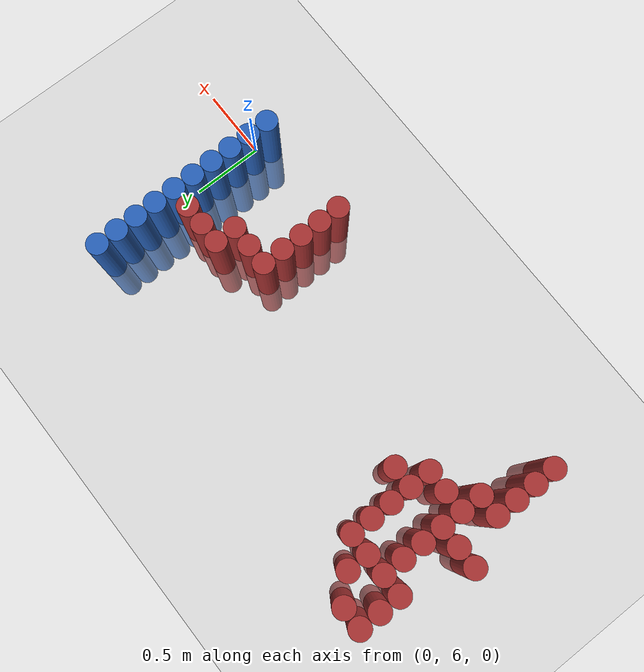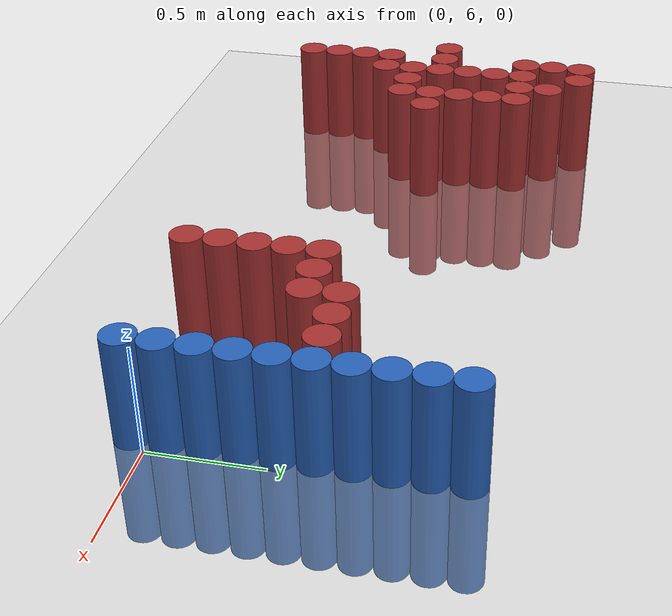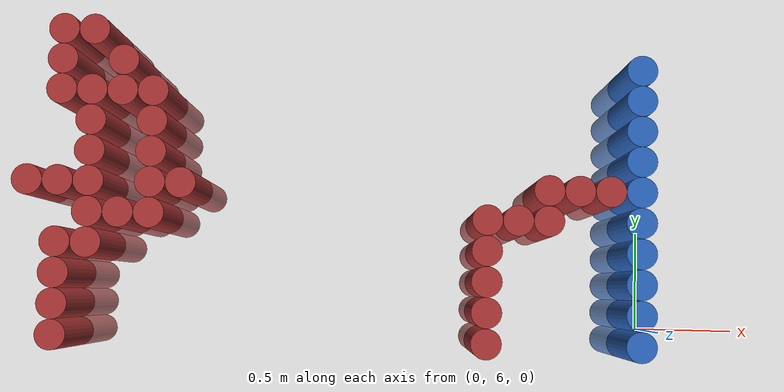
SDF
<sdf version="1.6">
 <world name="default">
  <model name="ground_plane">
   <static>1</static>
   <link name="link">
    <collision name="collision">
     <geometry><plane><normal>0 0 1</normal><size>100 100</size></plane></geometry>
     <surface><friction><ode><mu>100</mu><mu2>50</mu2></ode></friction></surface>
    </collision>
    <visual name="visual">
     <cast_shadows>0</cast_shadows>
     <geometry><plane><normal>0 0 1</normal><size>100 100</size></plane></geometry>
     <material>
      <script><uri>file://media/materials/scripts/gazebo.material</uri><name>Gazebo/Grey</name></script>
     </material>
    </visual>
   </link>
  </model>
  <model name="unit_cylinder_163">
   <static>1</static>
   <pose>-3.075000 6.675000 0.000000 0.000000 0.000000 0.000000</pose>
   <link name="link">
    <inertial>
     <mass>1</mass>
     <inertia><ixx>0.145833</ixx><ixy>0</ixy><ixz>0</ixz><iyy>0.145833</iyy><iyz>0</iyz><izz>0.125</izz></inertia>
    </inertial>
    <collision name="collision">
     <geometry><cylinder><radius>0.075000</radius><length>1</length></cylinder></geometry>
    </collision>
    <visual name="visual">
     <geometry><cylinder><radius>0.075000</radius><length>1</length></cylinder></geometry>
     <material>
      <ambient>0.648000 0.192000 0.192000 1</ambient>
      <diffuse>0.648000 0.192000 0.192000 1</diffuse>
     </material>
     <material>
      <script><name>Gazebo/Grey</name><uri>file://media/materials/scripts/gazebo.material</uri></script>
     </material>
    </visual>
   </link>
  </model>
  <model name="unit_cylinder_171">
   <static>1</static>
   <pose>-2.925000 5.925000 0.000000 0.000000 0.000000 0.000000</pose>
   <link name="link">
    <inertial>
     <mass>1</mass>
     <inertia><ixx>0.145833</ixx><ixy>0</ixy><ixz>0</ixz><iyy>0.145833</iyy><iyz>0</iyz><izz>0.125</izz></inertia>
    </inertial>
    <collision name="collision">
     <geometry><cylinder><radius>0.075000</radius><length>1</length></cylinder></geometry>
    </collision>
    <visual name="visual">
     <geometry><cylinder><radius>0.075000</radius><length>1</length></cylinder></geometry>
     <material>
      <ambient>0.648000 0.192000 0.192000 1</ambient>
      <diffuse>0.648000 0.192000 0.192000 1</diffuse>
     </material>
     <material>
      <script><name>Gazebo/Grey</name><uri>file://media/materials/scripts/gazebo.material</uri></script>
     </material>
    </visual>
   </link>
  </model>
  <model name="unit_cylinder_172">
   <static>1</static>
   <pose>-2.925000 6.075000 0.000000 0.000000 0.000000 0.000000</pose>
   <link name="link">
    <inertial>
     <mass>1</mass>
     <inertia><ixx>0.145833</ixx><ixy>0</ixy><ixz>0</ixz><iyy>0.145833</iyy><iyz>0</iyz><izz>0.125</izz></inertia>
    </inertial>
    <collision name="collision">
     <geometry><cylinder><radius>0.075000</radius><length>1</length></cylinder></geometry>
    </collision>
    <visual name="visual">
     <geometry><cylinder><radius>0.075000</radius><length>1</length></cylinder></geometry>
     <material>
      <ambient>0.648000 0.192000 0.192000 1</ambient>
      <diffuse>0.648000 0.192000 0.192000 1</diffuse>
     </material>
     <material>
      <script><name>Gazebo/Grey</name><uri>file://media/materials/scripts/gazebo.material</uri></script>
     </material>
    </visual>
   </link>
  </model>
  <model name="unit_cylinder_173">
   <static>1</static>
   <pose>-2.925000 6.225000 0.000000 0.000000 0.000000 0.000000</pose>
   <link name="link">
    <inertial>
     <mass>1</mass>
     <inertia><ixx>0.145833</ixx><ixy>0</ixy><ixz>0</ixz><iyy>0.145833</iyy><iyz>0</iyz><izz>0.125</izz></inertia>
    </inertial>
    <collision name="collision">
     <geometry><cylinder><radius>0.075000</radius><length>1</length></cylinder></geometry>
    </collision>
    <visual name="visual">
     <geometry><cylinder><radius>0.075000</radius><length>1</length></cylinder></geometry>
     <material>
      <ambient>0.648000 0.192000 0.192000 1</ambient>
      <diffuse>0.648000 0.192000 0.192000 1</diffuse>
     </material>
     <material>
      <script><name>Gazebo/Grey</name><uri>file://media/materials/scripts/gazebo.material</uri></script>
     </material>
    </visual>
   </link>
  </model>
  <model name="unit_cylinder_174">
   <static>1</static>
   <pose>-2.925000 6.375000 0.000000 0.000000 0.000000 0.000000</pose>
   <link name="link">
    <inertial>
     <mass>1</mass>
     <inertia><ixx>0.145833</ixx><ixy>0</ixy><ixz>0</ixz><iyy>0.145833</iyy><iyz>0</iyz><izz>0.125</izz></inertia>
    </inertial>
    <collision name="collision">
     <geometry><cylinder><radius>0.075000</radius><length>1</length></cylinder></geometry>
    </collision>
    <visual name="visual">
     <geometry><cylinder><radius>0.075000</radius><length>1</length></cylinder></geometry>
     <material>
      <ambient>0.648000 0.192000 0.192000 1</ambient>
      <diffuse>0.648000 0.192000 0.192000 1</diffuse>
     </material>
     <material>
      <script><name>Gazebo/Grey</name><uri>file://media/materials/scripts/gazebo.material</uri></script>
     </material>
    </visual>
   </link>
  </model>
  <model name="unit_cylinder_175">
   <static>1</static>
   <pose>-2.925000 6.675000 0.000000 0.000000 0.000000 0.000000</pose>
   <link name="link">
    <inertial>
     <mass>1</mass>
     <inertia><ixx>0.145833</ixx><ixy>0</ixy><ixz>0</ixz><iyy>0.145833</iyy><iyz>0</iyz><izz>0.125</izz></inertia>
    </inertial>
    <collision name="collision">
     <geometry><cylinder><radius>0.075000</radius><length>1</length></cylinder></geometry>
    </collision>
    <visual name="visual">
     <geometry><cylinder><radius>0.075000</radius><length>1</length></cylinder></geometry>
     <material>
      <ambient>0.648000 0.192000 0.192000 1</ambient>
      <diffuse>0.648000 0.192000 0.192000 1</diffuse>
     </material>
     <material>
      <script><name>Gazebo/Grey</name><uri>file://media/materials/scripts/gazebo.material</uri></script>
     </material>
    </visual>
   </link>
  </model>
  <model name="unit_cylinder_176">
   <static>1</static>
   <pose>-2.925000 7.125000 0.000000 0.000000 0.000000 0.000000</pose>
   <link name="link">
    <inertial>
     <mass>1</mass>
     <inertia><ixx>0.145833</ixx><ixy>0</ixy><ixz>0</ixz><iyy>0.145833</iyy><iyz>0</iyz><izz>0.125</izz></inertia>
    </inertial>
    <collision name="collision">
     <geometry><cylinder><radius>0.075000</radius><length>1</length></cylinder></geometry>
    </collision>
    <visual name="visual">
     <geometry><cylinder><radius>0.075000</radius><length>1</length></cylinder></geometry>
     <material>
      <ambient>0.648000 0.192000 0.192000 1</ambient>
      <diffuse>0.648000 0.192000 0.192000 1</diffuse>
     </material>
     <material>
      <script><name>Gazebo/Grey</name><uri>file://media/materials/scripts/gazebo.material</uri></script>
     </material>
    </visual>
   </link>
  </model>
  <model name="unit_cylinder_177">
   <static>1</static>
   <pose>-2.925000 7.275000 0.000000 0.000000 0.000000 0.000000</pose>
   <link name="link">
    <inertial>
     <mass>1</mass>
     <inertia><ixx>0.145833</ixx><ixy>0</ixy><ixz>0</ixz><iyy>0.145833</iyy><iyz>0</iyz><izz>0.125</izz></inertia>
    </inertial>
    <collision name="collision">
     <geometry><cylinder><radius>0.075000</radius><length>1</length></cylinder></geometry>
    </collision>
    <visual name="visual">
     <geometry><cylinder><radius>0.075000</radius><length>1</length></cylinder></geometry>
     <material>
      <ambient>0.648000 0.192000 0.192000 1</ambient>
      <diffuse>0.648000 0.192000 0.192000 1</diffuse>
     </material>
     <material>
      <script><name>Gazebo/Grey</name><uri>file://media/materials/scripts/gazebo.material</uri></script>
     </material>
    </visual>
   </link>
  </model>
  <model name="unit_cylinder_178">
   <static>1</static>
   <pose>-2.925000 7.425000 0.000000 0.000000 0.000000 0.000000</pose>
   <link name="link">
    <inertial>
     <mass>1</mass>
     <inertia><ixx>0.145833</ixx><ixy>0</ixy><ixz>0</ixz><iyy>0.145833</iyy><iyz>0</iyz><izz>0.125</izz></inertia>
    </inertial>
    <collision name="collision">
     <geometry><cylinder><radius>0.075000</radius><length>1</length></cylinder></geometry>
    </collision>
    <visual name="visual">
     <geometry><cylinder><radius>0.075000</radius><length>1</length></cylinder></geometry>
     <material>
      <ambient>0.648000 0.192000 0.192000 1</ambient>
      <diffuse>0.648000 0.192000 0.192000 1</diffuse>
     </material>
     <material>
      <script><name>Gazebo/Grey</name><uri>file://media/materials/scripts/gazebo.material</uri></script>
     </material>
    </visual>
   </link>
  </model>
  <model name="unit_cylinder_187">
   <static>1</static>
   <pose>-2.775000 6.375000 0.000000 0.000000 0.000000 0.000000</pose>
   <link name="link">
    <inertial>
     <mass>1</mass>
     <inertia><ixx>0.145833</ixx><ixy>0</ixy><ixz>0</ixz><iyy>0.145833</iyy><iyz>0</iyz><izz>0.125</izz></inertia>
    </inertial>
    <collision name="collision">
     <geometry><cylinder><radius>0.075000</radius><length>1</length></cylinder></geometry>
    </collision>
    <visual name="visual">
     <geometry><cylinder><radius>0.075000</radius><length>1</length></cylinder></geometry>
     <material>
      <ambient>0.648000 0.192000 0.192000 1</ambient>
      <diffuse>0.648000 0.192000 0.192000 1</diffuse>
     </material>
     <material>
      <script><name>Gazebo/Grey</name><uri>file://media/materials/scripts/gazebo.material</uri></script>
     </material>
    </visual>
   </link>
  </model>
  <model name="unit_cylinder_188">
   <static>1</static>
   <pose>-2.775000 6.525000 0.000000 0.000000 0.000000 0.000000</pose>
   <link name="link">
    <inertial>
     <mass>1</mass>
     <inertia><ixx>0.145833</ixx><ixy>0</ixy><ixz>0</ixz><iyy>0.145833</iyy><iyz>0</iyz><izz>0.125</izz></inertia>
    </inertial>
    <collision name="collision">
     <geometry><cylinder><radius>0.075000</radius><length>1</length></cylinder></geometry>
    </collision>
    <visual name="visual">
     <geometry><cylinder><radius>0.075000</radius><length>1</length></cylinder></geometry>
     <material>
      <ambient>0.648000 0.192000 0.192000 1</ambient>
      <diffuse>0.648000 0.192000 0.192000 1</diffuse>
     </material>
     <material>
      <script><name>Gazebo/Grey</name><uri>file://media/materials/scripts/gazebo.material</uri></script>
     </material>
    </visual>
   </link>
  </model>
  <model name="unit_cylinder_189">
   <static>1</static>
   <pose>-2.775000 6.675000 0.000000 0.000000 0.000000 0.000000</pose>
   <link name="link">
    <inertial>
     <mass>1</mass>
     <inertia><ixx>0.145833</ixx><ixy>0</ixy><ixz>0</ixz><iyy>0.145833</iyy><iyz>0</iyz><izz>0.125</izz></inertia>
    </inertial>
    <collision name="collision">
     <geometry><cylinder><radius>0.075000</radius><length>1</length></cylinder></geometry>
    </collision>
    <visual name="visual">
     <geometry><cylinder><radius>0.075000</radius><length>1</length></cylinder></geometry>
     <material>
      <ambient>0.648000 0.192000 0.192000 1</ambient>
      <diffuse>0.648000 0.192000 0.192000 1</diffuse>
     </material>
     <material>
      <script><name>Gazebo/Grey</name><uri>file://media/materials/scripts/gazebo.material</uri></script>
     </material>
    </visual>
   </link>
  </model>
  <model name="unit_cylinder_190">
   <static>1</static>
   <pose>-2.775000 6.825000 0.000000 0.000000 0.000000 0.000000</pose>
   <link name="link">
    <inertial>
     <mass>1</mass>
     <inertia><ixx>0.145833</ixx><ixy>0</ixy><ixz>0</ixz><iyy>0.145833</iyy><iyz>0</iyz><izz>0.125</izz></inertia>
    </inertial>
    <collision name="collision">
     <geometry><cylinder><radius>0.075000</radius><length>1</length></cylinder></geometry>
    </collision>
    <visual name="visual">
     <geometry><cylinder><radius>0.075000</radius><length>1</length></cylinder></geometry>
     <material>
      <ambient>0.648000 0.192000 0.192000 1</ambient>
      <diffuse>0.648000 0.192000 0.192000 1</diffuse>
     </material>
     <material>
      <script><name>Gazebo/Grey</name><uri>file://media/materials/scripts/gazebo.material</uri></script>
     </material>
    </visual>
   </link>
  </model>
  <model name="unit_cylinder_191">
   <static>1</static>
   <pose>-2.775000 6.975000 0.000000 0.000000 0.000000 0.000000</pose>
   <link name="link">
    <inertial>
     <mass>1</mass>
     <inertia><ixx>0.145833</ixx><ixy>0</ixy><ixz>0</ixz><iyy>0.145833</iyy><iyz>0</iyz><izz>0.125</izz></inertia>
    </inertial>
    <collision name="collision">
     <geometry><cylinder><radius>0.075000</radius><length>1</length></cylinder></geometry>
    </collision>
    <visual name="visual">
     <geometry><cylinder><radius>0.075000</radius><length>1</length></cylinder></geometry>
     <material>
      <ambient>0.648000 0.192000 0.192000 1</ambient>
      <diffuse>0.648000 0.192000 0.192000 1</diffuse>
     </material>
     <material>
      <script><name>Gazebo/Grey</name><uri>file://media/materials/scripts/gazebo.material</uri></script>
     </material>
    </visual>
   </link>
  </model>
  <model name="unit_cylinder_192">
   <static>1</static>
   <pose>-2.775000 7.125000 0.000000 0.000000 0.000000 0.000000</pose>
   <link name="link">
    <inertial>
     <mass>1</mass>
     <inertia><ixx>0.145833</ixx><ixy>0</ixy><ixz>0</ixz><iyy>0.145833</iyy><iyz>0</iyz><izz>0.125</izz></inertia>
    </inertial>
    <collision name="collision">
     <geometry><cylinder><radius>0.075000</radius><length>1</length></cylinder></geometry>
    </collision>
    <visual name="visual">
     <geometry><cylinder><radius>0.075000</radius><length>1</length></cylinder></geometry>
     <material>
      <ambient>0.648000 0.192000 0.192000 1</ambient>
      <diffuse>0.648000 0.192000 0.192000 1</diffuse>
     </material>
     <material>
      <script><name>Gazebo/Grey</name><uri>file://media/materials/scripts/gazebo.material</uri></script>
     </material>
    </visual>
   </link>
  </model>
  <model name="unit_cylinder_193">
   <static>1</static>
   <pose>-2.775000 7.425000 0.000000 0.000000 0.000000 0.000000</pose>
   <link name="link">
    <inertial>
     <mass>1</mass>
     <inertia><ixx>0.145833</ixx><ixy>0</ixy><ixz>0</ixz><iyy>0.145833</iyy><iyz>0</iyz><izz>0.125</izz></inertia>
    </inertial>
    <collision name="collision">
     <geometry><cylinder><radius>0.075000</radius><length>1</length></cylinder></geometry>
    </collision>
    <visual name="visual">
     <geometry><cylinder><radius>0.075000</radius><length>1</length></cylinder></geometry>
     <material>
      <ambient>0.648000 0.192000 0.192000 1</ambient>
      <diffuse>0.648000 0.192000 0.192000 1</diffuse>
     </material>
     <material>
      <script><name>Gazebo/Grey</name><uri>file://media/materials/scripts/gazebo.material</uri></script>
     </material>
    </visual>
   </link>
  </model>
  <model name="unit_cylinder_194">
   <static>1</static>
   <pose>-2.625000 6.525000 0.000000 0.000000 0.000000 0.000000</pose>
   <link name="link">
    <inertial>
     <mass>1</mass>
     <inertia><ixx>0.145833</ixx><ixy>0</ixy><ixz>0</ixz><iyy>0.145833</iyy><iyz>0</iyz><izz>0.125</izz></inertia>
    </inertial>
    <collision name="collision">
     <geometry><cylinder><radius>0.075000</radius><length>1</length></cylinder></geometry>
    </collision>
    <visual name="visual">
     <geometry><cylinder><radius>0.075000</radius><length>1</length></cylinder></geometry>
     <material>
      <ambient>0.648000 0.192000 0.192000 1</ambient>
      <diffuse>0.648000 0.192000 0.192000 1</diffuse>
     </material>
     <material>
      <script><name>Gazebo/Grey</name><uri>file://media/materials/scripts/gazebo.material</uri></script>
     </material>
    </visual>
   </link>
  </model>
  <model name="unit_cylinder_195">
   <static>1</static>
   <pose>-2.625000 7.125000 0.000000 0.000000 0.000000 0.000000</pose>
   <link name="link">
    <inertial>
     <mass>1</mass>
     <inertia><ixx>0.145833</ixx><ixy>0</ixy><ixz>0</ixz><iyy>0.145833</iyy><iyz>0</iyz><izz>0.125</izz></inertia>
    </inertial>
    <collision name="collision">
     <geometry><cylinder><radius>0.075000</radius><length>1</length></cylinder></geometry>
    </collision>
    <visual name="visual">
     <geometry><cylinder><radius>0.075000</radius><length>1</length></cylinder></geometry>
     <material>
      <ambient>0.648000 0.192000 0.192000 1</ambient>
      <diffuse>0.648000 0.192000 0.192000 1</diffuse>
     </material>
     <material>
      <script><name>Gazebo/Grey</name><uri>file://media/materials/scripts/gazebo.material</uri></script>
     </material>
    </visual>
   </link>
  </model>
  <model name="unit_cylinder_196">
   <static>1</static>
   <pose>-2.625000 7.275000 0.000000 0.000000 0.000000 0.000000</pose>
   <link name="link">
    <inertial>
     <mass>1</mass>
     <inertia><ixx>0.145833</ixx><ixy>0</ixy><ixz>0</ixz><iyy>0.145833</iyy><iyz>0</iyz><izz>0.125</izz></inertia>
    </inertial>
    <collision name="collision">
     <geometry><cylinder><radius>0.075000</radius><length>1</length></cylinder></geometry>
    </collision>
    <visual name="visual">
     <geometry><cylinder><radius>0.075000</radius><length>1</length></cylinder></geometry>
     <material>
      <ambient>0.648000 0.192000 0.192000 1</ambient>
      <diffuse>0.648000 0.192000 0.192000 1</diffuse>
     </material>
     <material>
      <script><name>Gazebo/Grey</name><uri>file://media/materials/scripts/gazebo.material</uri></script>
     </material>
    </visual>
   </link>
  </model>
  <model name="unit_cylinder_198">
   <static>1</static>
   <pose>-2.475000 6.525000 0.000000 0.000000 0.000000 0.000000</pose>
   <link name="link">
    <inertial>
     <mass>1</mass>
     <inertia><ixx>0.145833</ixx><ixy>0</ixy><ixz>0</ixz><iyy>0.145833</iyy><iyz>0</iyz><izz>0.125</izz></inertia>
    </inertial>
    <collision name="collision">
     <geometry><cylinder><radius>0.075000</radius><length>1</length></cylinder></geometry>
    </collision>
    <visual name="visual">
     <geometry><cylinder><radius>0.075000</radius><length>1</length></cylinder></geometry>
     <material>
      <ambient>0.648000 0.192000 0.192000 1</ambient>
      <diffuse>0.648000 0.192000 0.192000 1</diffuse>
     </material>
     <material>
      <script><name>Gazebo/Grey</name><uri>file://media/materials/scripts/gazebo.material</uri></script>
     </material>
    </visual>
   </link>
  </model>
  <model name="unit_cylinder_199">
   <static>1</static>
   <pose>-2.475000 6.675000 0.000000 0.000000 0.000000 0.000000</pose>
   <link name="link">
    <inertial>
     <mass>1</mass>
     <inertia><ixx>0.145833</ixx><ixy>0</ixy><ixz>0</ixz><iyy>0.145833</iyy><iyz>0</iyz><izz>0.125</izz></inertia>
    </inertial>
    <collision name="collision">
     <geometry><cylinder><radius>0.075000</radius><length>1</length></cylinder></geometry>
    </collision>
    <visual name="visual">
     <geometry><cylinder><radius>0.075000</radius><length>1</length></cylinder></geometry>
     <material>
      <ambient>0.648000 0.192000 0.192000 1</ambient>
      <diffuse>0.648000 0.192000 0.192000 1</diffuse>
     </material>
     <material>
      <script><name>Gazebo/Grey</name><uri>file://media/materials/scripts/gazebo.material</uri></script>
     </material>
    </visual>
   </link>
  </model>
  <model name="unit_cylinder_200">
   <static>1</static>
   <pose>-2.475000 6.825000 0.000000 0.000000 0.000000 0.000000</pose>
   <link name="link">
    <inertial>
     <mass>1</mass>
     <inertia><ixx>0.145833</ixx><ixy>0</ixy><ixz>0</ixz><iyy>0.145833</iyy><iyz>0</iyz><izz>0.125</izz></inertia>
    </inertial>
    <collision name="collision">
     <geometry><cylinder><radius>0.075000</radius><length>1</length></cylinder></geometry>
    </collision>
    <visual name="visual">
     <geometry><cylinder><radius>0.075000</radius><length>1</length></cylinder></geometry>
     <material>
      <ambient>0.648000 0.192000 0.192000 1</ambient>
      <diffuse>0.648000 0.192000 0.192000 1</diffuse>
     </material>
     <material>
      <script><name>Gazebo/Grey</name><uri>file://media/materials/scripts/gazebo.material</uri></script>
     </material>
    </visual>
   </link>
  </model>
  <model name="unit_cylinder_201">
   <static>1</static>
   <pose>-2.475000 6.975000 0.000000 0.000000 0.000000 0.000000</pose>
   <link name="link">
    <inertial>
     <mass>1</mass>
     <inertia><ixx>0.145833</ixx><ixy>0</ixy><ixz>0</ixz><iyy>0.145833</iyy><iyz>0</iyz><izz>0.125</izz></inertia>
    </inertial>
    <collision name="collision">
     <geometry><cylinder><radius>0.075000</radius><length>1</length></cylinder></geometry>
    </collision>
    <visual name="visual">
     <geometry><cylinder><radius>0.075000</radius><length>1</length></cylinder></geometry>
     <material>
      <ambient>0.648000 0.192000 0.192000 1</ambient>
      <diffuse>0.648000 0.192000 0.192000 1</diffuse>
     </material>
     <material>
      <script><name>Gazebo/Grey</name><uri>file://media/materials/scripts/gazebo.material</uri></script>
     </material>
    </visual>
   </link>
  </model>
  <model name="unit_cylinder_202">
   <static>1</static>
   <pose>-2.475000 7.125000 0.000000 0.000000 0.000000 0.000000</pose>
   <link name="link">
    <inertial>
     <mass>1</mass>
     <inertia><ixx>0.145833</ixx><ixy>0</ixy><ixz>0</ixz><iyy>0.145833</iyy><iyz>0</iyz><izz>0.125</izz></inertia>
    </inertial>
    <collision name="collision">
     <geometry><cylinder><radius>0.075000</radius><length>1</length></cylinder></geometry>
    </collision>
    <visual name="visual">
     <geometry><cylinder><radius>0.075000</radius><length>1</length></cylinder></geometry>
     <material>
      <ambient>0.648000 0.192000 0.192000 1</ambient>
      <diffuse>0.648000 0.192000 0.192000 1</diffuse>
     </material>
     <material>
      <script><name>Gazebo/Grey</name><uri>file://media/materials/scripts/gazebo.material</uri></script>
     </material>
    </visual>
   </link>
  </model>
  <model name="unit_cylinder_203">
   <static>1</static>
   <pose>-2.325000 6.675000 0.000000 0.000000 0.000000 0.000000</pose>
   <link name="link">
    <inertial>
     <mass>1</mass>
     <inertia><ixx>0.145833</ixx><ixy>0</ixy><ixz>0</ixz><iyy>0.145833</iyy><iyz>0</iyz><izz>0.125</izz></inertia>
    </inertial>
    <collision name="collision">
     <geometry><cylinder><radius>0.075000</radius><length>1</length></cylinder></geometry>
    </collision>
    <visual name="visual">
     <geometry><cylinder><radius>0.075000</radius><length>1</length></cylinder></geometry>
     <material>
      <ambient>0.648000 0.192000 0.192000 1</ambient>
      <diffuse>0.648000 0.192000 0.192000 1</diffuse>
     </material>
     <material>
      <script><name>Gazebo/Grey</name><uri>file://media/materials/scripts/gazebo.material</uri></script>
     </material>
    </visual>
   </link>
  </model>
  <model name="unit_cylinder_209">
   <static>1</static>
   <pose>-0.825000 5.925000 0.000000 0.000000 0.000000 0.000000</pose>
   <link name="link">
    <inertial>
     <mass>1</mass>
     <inertia><ixx>0.145833</ixx><ixy>0</ixy><ixz>0</ixz><iyy>0.145833</iyy><iyz>0</iyz><izz>0.125</izz></inertia>
    </inertial>
    <collision name="collision">
     <geometry><cylinder><radius>0.075000</radius><length>1</length></cylinder></geometry>
    </collision>
    <visual name="visual">
     <geometry><cylinder><radius>0.075000</radius><length>1</length></cylinder></geometry>
     <material>
      <ambient>0.648000 0.192000 0.192000 1</ambient>
      <diffuse>0.648000 0.192000 0.192000 1</diffuse>
     </material>
     <material>
      <script><name>Gazebo/Grey</name><uri>file://media/materials/scripts/gazebo.material</uri></script>
     </material>
    </visual>
   </link>
  </model>
  <model name="unit_cylinder_210">
   <static>1</static>
   <pose>-0.825000 6.075000 0.000000 0.000000 0.000000 0.000000</pose>
   <link name="link">
    <inertial>
     <mass>1</mass>
     <inertia><ixx>0.145833</ixx><ixy>0</ixy><ixz>0</ixz><iyy>0.145833</iyy><iyz>0</iyz><izz>0.125</izz></inertia>
    </inertial>
    <collision name="collision">
     <geometry><cylinder><radius>0.075000</radius><length>1</length></cylinder></geometry>
    </collision>
    <visual name="visual">
     <geometry><cylinder><radius>0.075000</radius><length>1</length></cylinder></geometry>
     <material>
      <ambient>0.648000 0.192000 0.192000 1</ambient>
      <diffuse>0.648000 0.192000 0.192000 1</diffuse>
     </material>
     <material>
      <script><name>Gazebo/Grey</name><uri>file://media/materials/scripts/gazebo.material</uri></script>
     </material>
    </visual>
   </link>
  </model>
  <model name="unit_cylinder_211">
   <static>1</static>
   <pose>-0.825000 6.225000 0.000000 0.000000 0.000000 0.000000</pose>
   <link name="link">
    <inertial>
     <mass>1</mass>
     <inertia><ixx>0.145833</ixx><ixy>0</ixy><ixz>0</ixz><iyy>0.145833</iyy><iyz>0</iyz><izz>0.125</izz></inertia>
    </inertial>
    <collision name="collision">
     <geometry><cylinder><radius>0.075000</radius><length>1</length></cylinder></geometry>
    </collision>
    <visual name="visual">
     <geometry><cylinder><radius>0.075000</radius><length>1</length></cylinder></geometry>
     <material>
      <ambient>0.648000 0.192000 0.192000 1</ambient>
      <diffuse>0.648000 0.192000 0.192000 1</diffuse>
     </material>
     <material>
      <script><name>Gazebo/Grey</name><uri>file://media/materials/scripts/gazebo.material</uri></script>
     </material>
    </visual>
   </link>
  </model>
  <model name="unit_cylinder_212">
   <static>1</static>
   <pose>-0.825000 6.375000 0.000000 0.000000 0.000000 0.000000</pose>
   <link name="link">
    <inertial>
     <mass>1</mass>
     <inertia><ixx>0.145833</ixx><ixy>0</ixy><ixz>0</ixz><iyy>0.145833</iyy><iyz>0</iyz><izz>0.125</izz></inertia>
    </inertial>
    <collision name="collision">
     <geometry><cylinder><radius>0.075000</radius><length>1</length></cylinder></geometry>
    </collision>
    <visual name="visual">
     <geometry><cylinder><radius>0.075000</radius><length>1</length></cylinder></geometry>
     <material>
      <ambient>0.648000 0.192000 0.192000 1</ambient>
      <diffuse>0.648000 0.192000 0.192000 1</diffuse>
     </material>
     <material>
      <script><name>Gazebo/Grey</name><uri>file://media/materials/scripts/gazebo.material</uri></script>
     </material>
    </visual>
   </link>
  </model>
  <model name="unit_cylinder_213">
   <static>1</static>
   <pose>-0.825000 6.525000 0.000000 0.000000 0.000000 0.000000</pose>
   <link name="link">
    <inertial>
     <mass>1</mass>
     <inertia><ixx>0.145833</ixx><ixy>0</ixy><ixz>0</ixz><iyy>0.145833</iyy><iyz>0</iyz><izz>0.125</izz></inertia>
    </inertial>
    <collision name="collision">
     <geometry><cylinder><radius>0.075000</radius><length>1</length></cylinder></geometry>
    </collision>
    <visual name="visual">
     <geometry><cylinder><radius>0.075000</radius><length>1</length></cylinder></geometry>
     <material>
      <ambient>0.648000 0.192000 0.192000 1</ambient>
      <diffuse>0.648000 0.192000 0.192000 1</diffuse>
     </material>
     <material>
      <script><name>Gazebo/Grey</name><uri>file://media/materials/scripts/gazebo.material</uri></script>
     </material>
    </visual>
   </link>
  </model>
  <model name="unit_cylinder_219">
   <static>1</static>
   <pose>-0.675000 6.525000 0.000000 0.000000 0.000000 0.000000</pose>
   <link name="link">
    <inertial>
     <mass>1</mass>
     <inertia><ixx>0.145833</ixx><ixy>0</ixy><ixz>0</ixz><iyy>0.145833</iyy><iyz>0</iyz><izz>0.125</izz></inertia>
    </inertial>
    <collision name="collision">
     <geometry><cylinder><radius>0.075000</radius><length>1</length></cylinder></geometry>
    </collision>
    <visual name="visual">
     <geometry><cylinder><radius>0.075000</radius><length>1</length></cylinder></geometry>
     <material>
      <ambient>0.648000 0.192000 0.192000 1</ambient>
      <diffuse>0.648000 0.192000 0.192000 1</diffuse>
     </material>
     <material>
      <script><name>Gazebo/Grey</name><uri>file://media/materials/scripts/gazebo.material</uri></script>
     </material>
    </visual>
   </link>
  </model>
  <model name="unit_cylinder_224">
   <static>1</static>
   <pose>-0.525000 6.525000 0.000000 0.000000 0.000000 0.000000</pose>
   <link name="link">
    <inertial>
     <mass>1</mass>
     <inertia><ixx>0.145833</ixx><ixy>0</ixy><ixz>0</ixz><iyy>0.145833</iyy><iyz>0</iyz><izz>0.125</izz></inertia>
    </inertial>
    <collision name="collision">
     <geometry><cylinder><radius>0.075000</radius><length>1</length></cylinder></geometry>
    </collision>
    <visual name="visual">
     <geometry><cylinder><radius>0.075000</radius><length>1</length></cylinder></geometry>
     <material>
      <ambient>0.648000 0.192000 0.192000 1</ambient>
      <diffuse>0.648000 0.192000 0.192000 1</diffuse>
     </material>
     <material>
      <script><name>Gazebo/Grey</name><uri>file://media/materials/scripts/gazebo.material</uri></script>
     </material>
    </visual>
   </link>
  </model>
  <model name="unit_cylinder_225">
   <static>1</static>
   <pose>-0.525000 6.675000 0.000000 0.000000 0.000000 0.000000</pose>
   <link name="link">
    <inertial>
     <mass>1</mass>
     <inertia><ixx>0.145833</ixx><ixy>0</ixy><ixz>0</ixz><iyy>0.145833</iyy><iyz>0</iyz><izz>0.125</izz></inertia>
    </inertial>
    <collision name="collision">
     <geometry><cylinder><radius>0.075000</radius><length>1</length></cylinder></geometry>
    </collision>
    <visual name="visual">
     <geometry><cylinder><radius>0.075000</radius><length>1</length></cylinder></geometry>
     <material>
      <ambient>0.648000 0.192000 0.192000 1</ambient>
      <diffuse>0.648000 0.192000 0.192000 1</diffuse>
     </material>
     <material>
      <script><name>Gazebo/Grey</name><uri>file://media/materials/scripts/gazebo.material</uri></script>
     </material>
    </visual>
   </link>
  </model>
  <model name="unit_cylinder_233">
   <static>1</static>
   <pose>-0.375000 6.675000 0.000000 0.000000 0.000000 0.000000</pose>
   <link name="link">
    <inertial>
     <mass>1</mass>
     <inertia><ixx>0.145833</ixx><ixy>0</ixy><ixz>0</ixz><iyy>0.145833</iyy><iyz>0</iyz><izz>0.125</izz></inertia>
    </inertial>
    <collision name="collision">
     <geometry><cylinder><radius>0.075000</radius><length>1</length></cylinder></geometry>
    </collision>
    <visual name="visual">
     <geometry><cylinder><radius>0.075000</radius><length>1</length></cylinder></geometry>
     <material>
      <ambient>0.648000 0.192000 0.192000 1</ambient>
      <diffuse>0.648000 0.192000 0.192000 1</diffuse>
     </material>
     <material>
      <script><name>Gazebo/Grey</name><uri>file://media/materials/scripts/gazebo.material</uri></script>
     </material>
    </visual>
   </link>
  </model>
  <model name="unit_cylinder_240">
   <static>1</static>
   <pose>-0.225000 6.675000 0.000000 0.000000 0.000000 0.000000</pose>
   <link name="link">
    <inertial>
     <mass>1</mass>
     <inertia><ixx>0.145833</ixx><ixy>0</ixy><ixz>0</ixz><iyy>0.145833</iyy><iyz>0</iyz><izz>0.125</izz></inertia>
    </inertial>
    <collision name="collision">
     <geometry><cylinder><radius>0.075000</radius><length>1</length></cylinder></geometry>
    </collision>
    <visual name="visual">
     <geometry><cylinder><radius>0.075000</radius><length>1</length></cylinder></geometry>
     <material>
      <ambient>0.648000 0.192000 0.192000 1</ambient>
      <diffuse>0.648000 0.192000 0.192000 1</diffuse>
     </material>
     <material>
      <script><name>Gazebo/Grey</name><uri>file://media/materials/scripts/gazebo.material</uri></script>
     </material>
    </visual>
   </link>
  </model>
  <model name="unit_cylinder_249">
   <static>1</static>
   <pose>-0.075000 5.925000 0.000000 0.000000 0.000000 0.000000</pose>
   <link name="link">
    <inertial>
     <mass>1</mass>
     <inertia><ixx>0.145833</ixx><ixy>0</ixy><ixz>0</ixz><iyy>0.145833</iyy><iyz>0</iyz><izz>0.125</izz></inertia>
    </inertial>
    <collision name="collision">
     <geometry><cylinder><radius>0.075000</radius><length>1</length></cylinder></geometry>
    </collision>
    <visual name="visual">
     <geometry><cylinder><radius>0.075000</radius><length>1</length></cylinder></geometry>
     <material>
      <ambient>0.152000 0.379000 0.720000 1</ambient>
      <diffuse>0.152000 0.379000 0.720000 1</diffuse>
     </material>
     <material>
      <script><name>Gazebo/Grey</name><uri>file://media/materials/scripts/gazebo.material</uri></script>
     </material>
    </visual>
   </link>
  </model>
  <model name="unit_cylinder_250">
   <static>1</static>
   <pose>-0.075000 6.075000 0.000000 0.000000 0.000000 0.000000</pose>
   <link name="link">
    <inertial>
     <mass>1</mass>
     <inertia><ixx>0.145833</ixx><ixy>0</ixy><ixz>0</ixz><iyy>0.145833</iyy><iyz>0</iyz><izz>0.125</izz></inertia>
    </inertial>
    <collision name="collision">
     <geometry><cylinder><radius>0.075000</radius><length>1</length></cylinder></geometry>
    </collision>
    <visual name="visual">
     <geometry><cylinder><radius>0.075000</radius><length>1</length></cylinder></geometry>
     <material>
      <ambient>0.152000 0.379000 0.720000 1</ambient>
      <diffuse>0.152000 0.379000 0.720000 1</diffuse>
     </material>
     <material>
      <script><name>Gazebo/Grey</name><uri>file://media/materials/scripts/gazebo.material</uri></script>
     </material>
    </visual>
   </link>
  </model>
  <model name="unit_cylinder_251">
   <static>1</static>
   <pose>-0.075000 6.225000 0.000000 0.000000 0.000000 0.000000</pose>
   <link name="link">
    <inertial>
     <mass>1</mass>
     <inertia><ixx>0.145833</ixx><ixy>0</ixy><ixz>0</ixz><iyy>0.145833</iyy><iyz>0</iyz><izz>0.125</izz></inertia>
    </inertial>
    <collision name="collision">
     <geometry><cylinder><radius>0.075000</radius><length>1</length></cylinder></geometry>
    </collision>
    <visual name="visual">
     <geometry><cylinder><radius>0.075000</radius><length>1</length></cylinder></geometry>
     <material>
      <ambient>0.152000 0.379000 0.720000 1</ambient>
      <diffuse>0.152000 0.379000 0.720000 1</diffuse>
     </material>
     <material>
      <script><name>Gazebo/Grey</name><uri>file://media/materials/scripts/gazebo.material</uri></script>
     </material>
    </visual>
   </link>
  </model>
  <model name="unit_cylinder_252">
   <static>1</static>
   <pose>-0.075000 6.375000 0.000000 0.000000 0.000000 0.000000</pose>
   <link name="link">
    <inertial>
     <mass>1</mass>
     <inertia><ixx>0.145833</ixx><ixy>0</ixy><ixz>0</ixz><iyy>0.145833</iyy><iyz>0</iyz><izz>0.125</izz></inertia>
    </inertial>
    <collision name="collision">
     <geometry><cylinder><radius>0.075000</radius><length>1</length></cylinder></geometry>
    </collision>
    <visual name="visual">
     <geometry><cylinder><radius>0.075000</radius><length>1</length></cylinder></geometry>
     <material>
      <ambient>0.152000 0.379000 0.720000 1</ambient>
      <diffuse>0.152000 0.379000 0.720000 1</diffuse>
     </material>
     <material>
      <script><name>Gazebo/Grey</name><uri>file://media/materials/scripts/gazebo.material</uri></script>
     </material>
    </visual>
   </link>
  </model>
  <model name="unit_cylinder_253">
   <static>1</static>
   <pose>-0.075000 6.525000 0.000000 0.000000 0.000000 0.000000</pose>
   <link name="link">
    <inertial>
     <mass>1</mass>
     <inertia><ixx>0.145833</ixx><ixy>0</ixy><ixz>0</ixz><iyy>0.145833</iyy><iyz>0</iyz><izz>0.125</izz></inertia>
    </inertial>
    <collision name="collision">
     <geometry><cylinder><radius>0.075000</radius><length>1</length></cylinder></geometry>
    </collision>
    <visual name="visual">
     <geometry><cylinder><radius>0.075000</radius><length>1</length></cylinder></geometry>
     <material>
      <ambient>0.152000 0.379000 0.720000 1</ambient>
      <diffuse>0.152000 0.379000 0.720000 1</diffuse>
     </material>
     <material>
      <script><name>Gazebo/Grey</name><uri>file://media/materials/scripts/gazebo.material</uri></script>
     </material>
    </visual>
   </link>
  </model>
  <model name="unit_cylinder_254">
   <static>1</static>
   <pose>-0.075000 6.675000 0.000000 0.000000 0.000000 0.000000</pose>
   <link name="link">
    <inertial>
     <mass>1</mass>
     <inertia><ixx>0.145833</ixx><ixy>0</ixy><ixz>0</ixz><iyy>0.145833</iyy><iyz>0</iyz><izz>0.125</izz></inertia>
    </inertial>
    <collision name="collision">
     <geometry><cylinder><radius>0.075000</radius><length>1</length></cylinder></geometry>
    </collision>
    <visual name="visual">
     <geometry><cylinder><radius>0.075000</radius><length>1</length></cylinder></geometry>
     <material>
      <ambient>0.152000 0.379000 0.720000 1</ambient>
      <diffuse>0.152000 0.379000 0.720000 1</diffuse>
     </material>
     <material>
      <script><name>Gazebo/Grey</name><uri>file://media/materials/scripts/gazebo.material</uri></script>
     </material>
    </visual>
   </link>
  </model>
  <model name="unit_cylinder_255">
   <static>1</static>
   <pose>-0.075000 6.825000 0.000000 0.000000 0.000000 0.000000</pose>
   <link name="link">
    <inertial>
     <mass>1</mass>
     <inertia><ixx>0.145833</ixx><ixy>0</ixy><ixz>0</ixz><iyy>0.145833</iyy><iyz>0</iyz><izz>0.125</izz></inertia>
    </inertial>
    <collision name="collision">
     <geometry><cylinder><radius>0.075000</radius><length>1</length></cylinder></geometry>
    </collision>
    <visual name="visual">
     <geometry><cylinder><radius>0.075000</radius><length>1</length></cylinder></geometry>
     <material>
      <ambient>0.152000 0.379000 0.720000 1</ambient>
      <diffuse>0.152000 0.379000 0.720000 1</diffuse>
     </material>
     <material>
      <script><name>Gazebo/Grey</name><uri>file://media/materials/scripts/gazebo.material</uri></script>
     </material>
    </visual>
   </link>
  </model>
  <model name="unit_cylinder_256">
   <static>1</static>
   <pose>-0.075000 6.975000 0.000000 0.000000 0.000000 0.000000</pose>
   <link name="link">
    <inertial>
     <mass>1</mass>
     <inertia><ixx>0.145833</ixx><ixy>0</ixy><ixz>0</ixz><iyy>0.145833</iyy><iyz>0</iyz><izz>0.125</izz></inertia>
    </inertial>
    <collision name="collision">
     <geometry><cylinder><radius>0.075000</radius><length>1</length></cylinder></geometry>
    </collision>
    <visual name="visual">
     <geometry><cylinder><radius>0.075000</radius><length>1</length></cylinder></geometry>
     <material>
      <ambient>0.152000 0.379000 0.720000 1</ambient>
      <diffuse>0.152000 0.379000 0.720000 1</diffuse>
     </material>
     <material>
      <script><name>Gazebo/Grey</name><uri>file://media/materials/scripts/gazebo.material</uri></script>
     </material>
    </visual>
   </link>
  </model>
  <model name="unit_cylinder_257">
   <static>1</static>
   <pose>-0.075000 7.125000 0.000000 0.000000 0.000000 0.000000</pose>
   <link name="link">
    <inertial>
     <mass>1</mass>
     <inertia><ixx>0.145833</ixx><ixy>0</ixy><ixz>0</ixz><iyy>0.145833</iyy><iyz>0</iyz><izz>0.125</izz></inertia>
    </inertial>
    <collision name="collision">
     <geometry><cylinder><radius>0.075000</radius><length>1</length></cylinder></geometry>
    </collision>
    <visual name="visual">
     <geometry><cylinder><radius>0.075000</radius><length>1</length></cylinder></geometry>
     <material>
      <ambient>0.152000 0.379000 0.720000 1</ambient>
      <diffuse>0.152000 0.379000 0.720000 1</diffuse>
     </material>
     <material>
      <script><name>Gazebo/Grey</name><uri>file://media/materials/scripts/gazebo.material</uri></script>
     </material>
    </visual>
   </link>
  </model>
  <model name="unit_cylinder_258">
   <static>1</static>
   <pose>-0.075000 7.275000 0.000000 0.000000 0.000000 0.000000</pose>
   <link name="link">
    <inertial>
     <mass>1</mass>
     <inertia><ixx>0.145833</ixx><ixy>0</ixy><ixz>0</ixz><iyy>0.145833</iyy><iyz>0</iyz><izz>0.125</izz></inertia>
    </inertial>
    <collision name="collision">
     <geometry><cylinder><radius>0.075000</radius><length>1</length></cylinder></geometry>
    </collision>
    <visual name="visual">
     <geometry><cylinder><radius>0.075000</radius><length>1</length></cylinder></geometry>
     <material>
      <ambient>0.152000 0.379000 0.720000 1</ambient>
      <diffuse>0.152000 0.379000 0.720000 1</diffuse>
     </material>
     <material>
      <script><name>Gazebo/Grey</name><uri>file://media/materials/scripts/gazebo.material</uri></script>
     </material>
    </visual>
   </link>
  </model>
 </world>
</sdf>
